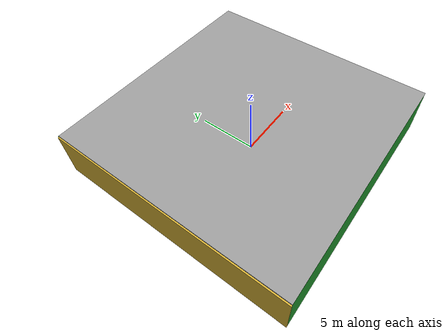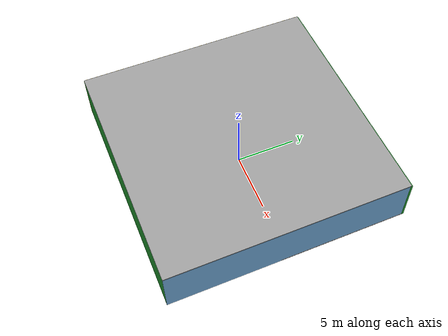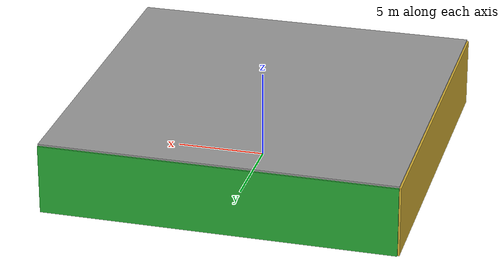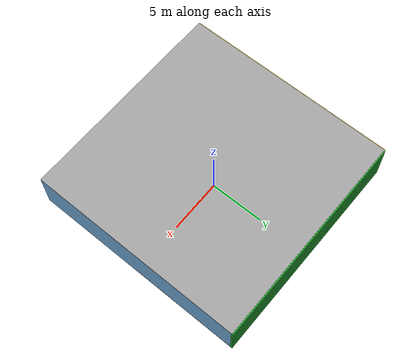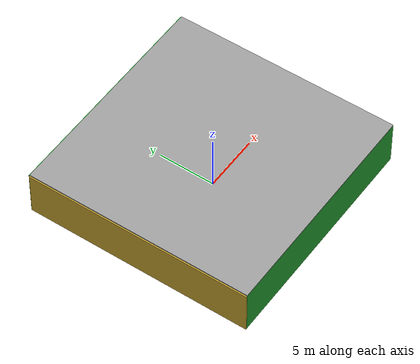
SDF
<sdf version="1.4">
 <world name="default">
  <physics type="ode">
   <max_step_size>0.001</max_step_size>
   <real_time_factor>1</real_time_factor>
   <real_time_update_rate>1000</real_time_update_rate>
   <gravity>0 0 -9.8</gravity>
  </physics>
  <scene><ambient>0.4 0.4 0.4 1</ambient><background>0.7 0.7 0.7 1</background><shadows>1</shadows></scene>
  <model name="Surrounding">
   <static>1</static>
   <link name="Ceiling">
    <collision name="Ceiling_Collision"><geometry><box><size>20 20 0.1</size></box></geometry></collision>
    <visual name="Ceiling_Visual">
     <geometry><box><size>20 20 0.1</size></box></geometry>
     <material>
      <script><uri>file://media/materials/scripts/gazebo.material</uri><name>Gazebo/Grey</name></script>
     </material>
    </visual>
    <pose>0 0 4.05 0 0 0</pose>
   </link>
   <link name="Wall_South">
    <collision name="Wall_South_Collision">
     <geometry><box><size>20 0 4</size></box></geometry>
     <pose>0 0 2 0 -0 0</pose>
    </collision>
    <visual name="Wall_South_Visual">
     <pose>0 0 2 0 -0 0</pose>
     <geometry><box><size>20 0 4</size></box></geometry>
     <material>
      <script><uri>file://media/materials/scripts/gazebo.material</uri><name>Gazebo/GreenGlow</name></script>
     </material>
    </visual>
    <velocity_decay><linear>0</linear><angular>0</angular></velocity_decay>
    <pose>0 -10 0 0 -0 0</pose>
   </link>
   <link name="Wall_East">
    <collision name="Wall_21_Collision">
     <geometry><box><size>20 0 4</size></box></geometry>
     <pose>0 0 2 0 -0 0</pose>
    </collision>
    <visual name="Wall_21_Visual">
     <pose>0 0 2 0 -0 0</pose>
     <geometry><box><size>20 0 4</size></box></geometry>
     <material>
      <script><uri>file://media/materials/scripts/gazebo.material</uri><name>Gazebo/SkyBlue</name></script>
     </material>
    </visual>
    <velocity_decay><linear>0</linear><angular>0</angular></velocity_decay>
    <pose>10 0 0 0 -0 1.5708</pose>
   </link>
   <link name="Wall_North">
    <collision name="Wall_22_Collision">
     <geometry><box><size>20 0.2 4</size></box></geometry>
     <pose>0 0 2 0 -0 0</pose>
    </collision>
    <visual name="Wall_22_Visual">
     <pose>0 0 2 0 -0 0</pose>
     <geometry><box><size>20 0.2 4</size></box></geometry>
     <material>
      <script><uri>file://media/materials/scripts/gazebo.material</uri><name>Gazebo/GreenGlow</name></script>
     </material>
    </visual>
    <velocity_decay><linear>0</linear><angular>0</angular></velocity_decay>
    <pose>0 10 0 0 -0 0</pose>
   </link>
   <link name="Wall_West">
    <collision name="Wall_23_Collision">
     <geometry><box><size>20 0.2 4</size></box></geometry>
     <pose>0 0 2 0 -0 0</pose>
    </collision>
    <visual name="Wall_23_Visual">
     <pose>0 0 2 0 -0 0</pose>
     <geometry><box><size>20 0.2 4</size></box></geometry>
     <material>
      <script><uri>file://media/materials/scripts/gazebo.material</uri><name>Gazebo/Gold</name></script>
     </material>
    </visual>
    <velocity_decay><linear>0</linear><angular>0</angular></velocity_decay>
    <pose>-10 0 0 0 0 -1.5708</pose>
   </link>
   <link name="Ground_link">
    <collision name="collision">
     <pose>0 0 .05 0 -0 0</pose>
     <geometry><box><size>20 20 0.1</size></box></geometry>
    </collision>
    <visual name="visual">
     <pose>0 0 .05 0 -0 0</pose>
     <geometry><box><size>20 20 0.1</size></box></geometry>
     <material>
      <script><uri>file://media/materials/scripts/gazebo.material</uri><name>Gazebo/FlatBlack</name></script>
     </material>
    </visual>
   </link>
   <static>1</static>
  </model>
  <spherical_coordinates>
   <surface_model>EARTH_WGS84</surface_model>
   <latitude_deg>0</latitude_deg>
   <longitude_deg>0</longitude_deg>
   <elevation>0</elevation>
   <heading_deg>0</heading_deg>
  </spherical_coordinates>
  <light name="lightball_0" type="diffuse">
   <diffuse>0.8 0.8 0.8 1</diffuse>
   <specular>0.2 0.2 0.2 1</specular>
   <attenuation>
    <range>100</range>
    <constant>0.7</constant>
    <linear>0.01</linear>
    <quadratic>0.001</quadratic>
   </attenuation>
   <direction>-0.5 0.1 -0.9</direction>
   <pose>0.879345292464 -1.53437111521 2.48802606441 0 0 0</pose>
  </light>
  <light name="lightball_1" type="diffuse">
   <diffuse>0.8 0.8 0.8 1</diffuse>
   <specular>0.2 0.2 0.2 1</specular>
   <attenuation>
    <range>100</range>
    <constant>0.7</constant>
    <linear>0.01</linear>
    <quadratic>0.001</quadratic>
   </attenuation>
   <direction>-0.5 0.1 -0.9</direction>
   <pose>-8.30335475911 -5.91438568267 3.05872800771 0 0 0</pose>
  </light>
  <light name="lightball_2" type="diffuse">
   <diffuse>0.8 0.8 0.8 1</diffuse>
   <specular>0.2 0.2 0.2 1</specular>
   <attenuation>
    <range>100</range>
    <constant>0.7</constant>
    <linear>0.01</linear>
    <quadratic>0.001</quadratic>
   </attenuation>
   <direction>-0.5 0.1 -0.9</direction>
   <pose>-8.11613635618 4.90214059438 1.33808500646 0 0 0</pose>
  </light>
  <light name="lightball_3" type="diffuse">
   <diffuse>0.8 0.8 0.8 1</diffuse>
   <specular>0.2 0.2 0.2 1</specular>
   <attenuation>
    <range>100</range>
    <constant>0.7</constant>
    <linear>0.01</linear>
    <quadratic>0.001</quadratic>
   </attenuation>
   <direction>-0.5 0.1 -0.9</direction>
   <pose>9.64068941763 -1.15628550212 0.526397802768 0 0 0</pose>
  </light>
  <light name="lightball_4" type="diffuse">
   <diffuse>0.8 0.8 0.8 1</diffuse>
   <specular>0.2 0.2 0.2 1</specular>
   <attenuation>
    <range>100</range>
    <constant>0.7</constant>
    <linear>0.01</linear>
    <quadratic>0.001</quadratic>
   </attenuation>
   <direction>-0.5 0.1 -0.9</direction>
   <pose>-2.41296595606 -7.76419380411 3.64742409778 0 0 0</pose>
  </light>
  <light name="lightball_5" type="diffuse">
   <diffuse>0.8 0.8 0.8 1</diffuse>
   <specular>0.2 0.2 0.2 1</specular>
   <attenuation>
    <range>100</range>
    <constant>0.7</constant>
    <linear>0.01</linear>
    <quadratic>0.001</quadratic>
   </attenuation>
   <direction>-0.5 0.1 -0.9</direction>
   <pose>9.63038272649 0.544123155498 0.80267690597 0 0 0</pose>
  </light>
  <light name="lightball_6" type="diffuse">
   <diffuse>0.8 0.8 0.8 1</diffuse>
   <specular>0.2 0.2 0.2 1</specular>
   <attenuation>
    <range>100</range>
    <constant>0.7</constant>
    <linear>0.01</linear>
    <quadratic>0.001</quadratic>
   </attenuation>
   <direction>-0.5 0.1 -0.9</direction>
   <pose>-1.35998565039 -9.70372209755 3.55320988108 0 0 0</pose>
  </light>
  <include>
   <uri>model://construction_cone</uri>
   <pose>-4.32535703002 0.952277877272 0 0 0 0.271419508295</pose>
  </include>
  <include>
   <uri>model://construction_cone</uri>
   <pose>-4.93114526412 8.04981660693 0 0 0 1.9927684636</pose>
  </include>
  <include>
   <uri>model://construction_cone</uri>
   <pose>2.08169981314 -7.68007466526 0 0 0 1.06126442748</pose>
  </include>
  <include>
   <uri>model://robocup_3Dsim_goal</uri>
   <pose>8.15882300685 -4.23527704534 0 0 0 2.83339581155</pose>
  </include>
 </world>
</sdf>

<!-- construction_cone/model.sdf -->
<sdf version="1.5">
  <model name="Construction Cone">
    <link name="link">
      <collision name="collision">
        <geometry>
          <mesh>
            <scale>10 10 10</scale>
            <uri>file://isr-testbed/construction_cone/meshes/construction_cone.dae</uri>
          </mesh>
        </geometry>
      </collision>
      <visual name="visual">
        <geometry>
          <mesh>
            <scale>10 10 10</scale>
            <uri>file://isr-testbed/construction_cone/meshes/construction_cone.dae</uri>
          </mesh>
        </geometry>
      </visual>
    </link>
  </model>
</sdf>

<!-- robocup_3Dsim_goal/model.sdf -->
<sdf version="1.5">
  <model name="robocup_3d_goal">
    <static>true</static>
    <link name="left_post">
      <pose>0 1.05 0.45 0 0 0</pose>
      <collision name="collision">
        <geometry>
          <cylinder>
            <radius>0.05</radius>
            <length>0.9</length>
          </cylinder>
        </geometry>
      </collision>
      <visual name="visual">
        <geometry>
          <cylinder>
            <radius>0.05</radius>
            <length>0.9</length>
          </cylinder>
        </geometry>
        <material>
          <script>
            <uri>file://media/materials/scripts/gazebo.material</uri>
            <name>Gazebo/ZincYellow</name>
          </script>
        </material>
      </visual>
    </link>
    <link name="left_support_horiz_lower">
      <pose>0.30 1.05 0.01 0 0 0</pose>
      <collision name="collision">
        <geometry>
          <box>
            <size>0.50 0.02 0.02</size>
          </box>
        </geometry>
      </collision>
      <visual name="visual">
        <geometry>
          <box>
            <size>0.50 0.02 0.02</size>
          </box>
        </geometry>
        <material>
          <script>
            <uri>file://media/materials/scripts/gazebo.material</uri>
            <name>Gazebo/White</name>
          </script>
        </material>
      </visual>
    </link>
    <link name="left_support_horiz_upper">
      <pose>0.30 1.05 0.79 0 0 0</pose>
      <collision name="collision">
        <geometry>
          <box>
            <size>0.50 0.02 0.02</size>
          </box>
        </geometry>
      </collision>
      <visual name="visual">
        <geometry>
          <box>
            <size>0.50 0.02 0.02</size>
          </box>
        </geometry>
        <material>
          <script>
            <uri>file://media/materials/scripts/gazebo.material</uri>
            <name>Gazebo/White</name>
          </script>
        </material>
      </visual>
    </link>
    <link name="left_support_vertical">
      <pose>0.56 1.05 0.4 0 1.5708 0</pose>
      <collision name="collision">
        <geometry>
          <box>
            <size>0.80 0.02 0.02</size>
          </box>
        </geometry>
      </collision>
      <visual name="visual">
        <geometry>
          <box>
            <size>0.80 0.02 0.02</size>
          </box>
        </geometry>
        <material>
          <script>
            <uri>file://media/materials/scripts/gazebo.material</uri>
            <name>Gazebo/White</name>
          </script>
        </material>
      </visual>
    </link>
    <link name="right_support_horiz_lower">
      <pose>0.30 -1.05 0.01 0 0 0</pose>
      <collision name="collision">
        <geometry>
          <box>
            <size>0.50 0.02 0.02</size>
          </box>
        </geometry>
      </collision>
      <visual name="visual">
        <geometry>
          <box>
            <size>0.50 0.02 0.02</size>
          </box>
        </geometry>
        <material>
          <script>
            <uri>file://media/materials/scripts/gazebo.material</uri>
            <name>Gazebo/White</name>
          </script>
        </material>
      </visual>
    </link>
    <link name="right_support_horiz_upper">
      <pose>0.30 -1.05 0.79 0 0 0</pose>
      <collision name="collision">
        <geometry>
          <box>
            <size>0.50 0.02 0.02</size>
          </box>
        </geometry>
      </collision>
      <visual name="visual">
        <geometry>
          <box>
            <size>0.50 0.02 0.02</size>
          </box>
        </geometry>
        <material>
          <script>
            <uri>file://media/materials/scripts/gazebo.material</uri>
            <name>Gazebo/White</name>
          </script>
        </material>
      </visual>
    </link>
    <link name="right_support_vertical">
      <pose>0.56 -1.05 0.4 0 1.5708 0</pose>
      <collision name="collision">
        <geometry>
          <box>
            <size>0.80 0.02 0.02</size>
          </box>
        </geometry>
      </collision>
      <visual name="visual">
        <geometry>
          <box>
            <size>0.80 0.02 0.02</size>
          </box>
        </geometry>
        <material>
          <script>
            <uri>file://media/materials/scripts/gazebo.material</uri>
            <name>Gazebo/White</name>
          </script>
        </material>
      </visual>
    </link>
    <link name="center_support_horiz_lower">
      <pose>0.56 0 0.01 0 1.5708 0</pose>
      <collision name="collision">
        <geometry>
          <box>
            <size>0.02 2.08 0.02</size>
          </box>
        </geometry>
      </collision>
      <visual name="visual">
        <geometry>
          <box>
            <size>0.02 2.08 0.02</size>
          </box>
        </geometry>
        <material>
          <script>
            <uri>file://media/materials/scripts/gazebo.material</uri>
            <name>Gazebo/White</name>
          </script>
        </material>
      </visual>
    </link>
    <link name="center_support_horiz_upper">
      <pose>0.56 0 0.79 0 1.5708 0</pose>
      <collision name="collision">
        <geometry>
          <box>
            <size>0.02 2.08 0.02</size>
          </box>
        </geometry>
      </collision>
      <visual name="visual">
        <geometry>
          <box>
            <size>0.02 2.08 0.02</size>
          </box>
        </geometry>
        <material>
          <script>
            <uri>file://media/materials/scripts/gazebo.material</uri>
            <name>Gazebo/White</name>
          </script>
        </material>
      </visual>
    </link>
    <link name="right_post">
      <pose>0 -1.05 0.45 0 0 0</pose>
      <collision name="collision">
        <geometry>
          <cylinder>
            <radius>0.05</radius>
            <length>0.9</length>
          </cylinder>
        </geometry>
      </collision>
      <visual name="visual">
        <geometry>
          <cylinder>
            <radius>0.05</radius>
            <length>0.9</length>
          </cylinder>
        </geometry>
        <material>
          <script>
            <uri>file://media/materials/scripts/gazebo.material</uri>
            <name>Gazebo/ZincYellow</name>
          </script>
        </material>
      </visual>
    </link>
    <link name="crossbar">
      <pose>0 0 0.85 1.57 1.57 0</pose>
      <collision name="collision">
        <geometry>
          <cylinder>
            <radius>0.05</radius>
            <length>2.0</length>
          </cylinder>
        </geometry>
      </collision>
      <visual name="visual">
        <geometry>
          <cylinder>
            <radius>0.05</radius>
            <length>2.0</length>
          </cylinder>
        </geometry>
        <material>
          <script>
            <uri>file://media/materials/scripts/gazebo.material</uri>
            <name>Gazebo/ZincYellow</name>
          </script>
        </material>
      </visual>
    </link>
    <link name="center_net">
      <pose>0.56 0 0.40 0 0 0</pose>
      <collision name="collision">
        <geometry>
          <box>
            <size>0.01 2.1 0.80</size>
          </box>
        </geometry>
      </collision>
      <visual name="visual">
        <geometry>
          <box>
            <size>0.01 2.1 0.80</size>
          </box>
        </geometry>
        <material>
          <script>
            <uri>model://../model_source/models/robocup09_spl_field/materials/scripts/</uri>
            <uri>model://../model_source/models/robocup09_spl_field/materials/textures/</uri>
            <name>RoboCup/Net</name>
          </script>
        </material>
      </visual>
    </link>
    <link name="left_net">
      <pose>0.30 1.05 0.40 0 0 0</pose>
      <collision name="collision">
        <geometry>
          <box>
            <size>0.50 0.01 0.76</size>
          </box>
        </geometry>
      </collision>
      <visual name="visual">
        <geometry>
          <box>
            <size>0.50 0.01 0.76</size>
          </box>
        </geometry>
        <material>
          <script>
            <uri>model://../model_source/models/robocup09_spl_field/materials/scripts/</uri>
            <uri>model://../model_source/models/robocup09_spl_field/materials/textures/</uri>
            <name>RoboCup/Net</name>
          </script>
        </material>
      </visual>
    </link>
    <link name="right_net">
      <pose>0.30 -1.05 0.40 0 0 0</pose>
      <collision name="collision">
        <geometry>
          <box>
            <size>0.50 0.01 0.76</size>
          </box>
        </geometry>
      </collision>
      <visual name="visual">
        <geometry>
          <box>
            <size>0.50 0.01 0.76</size>
          </box>
        </geometry>
        <material>
          <script>
            <uri>model://../model_source/models/robocup09_spl_field/materials/scripts/</uri>
            <uri>model://../model_source/models/robocup09_spl_field/materials/textures/</uri>
            <name>RoboCup/Net</name>
          </script>
        </material>
      </visual>
    </link>
  </model>
</sdf>
